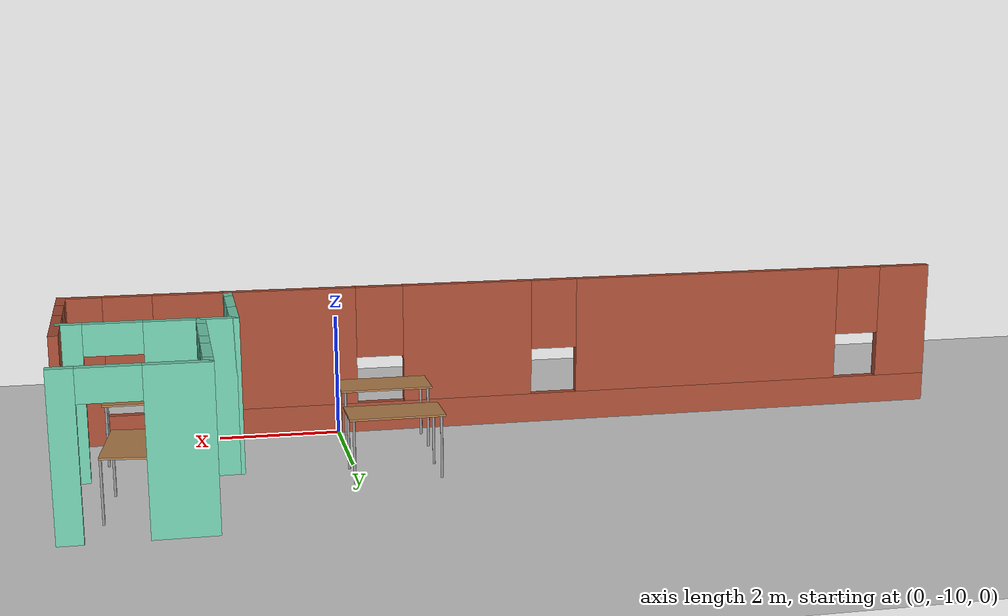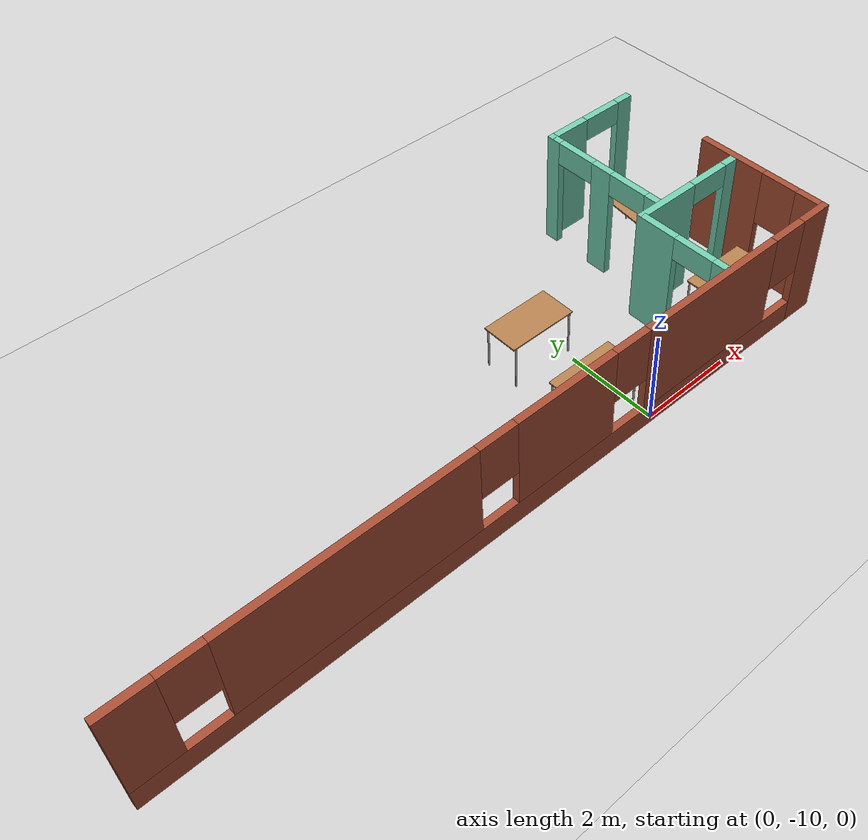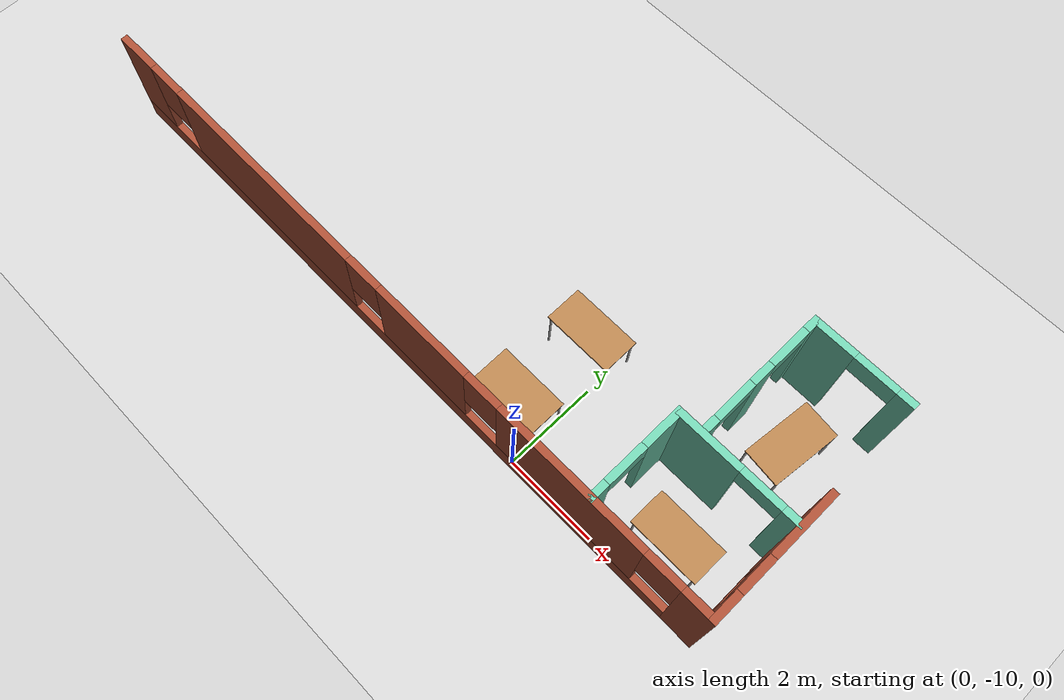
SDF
<sdf version="1.6">
 <world name="default">
  <model name="ground_plane">
   <static>1</static>
   <link name="link">
    <collision name="collision">
     <geometry><plane><normal>0 0 1</normal><size>100 100</size></plane></geometry>
     <surface>
      <contact><collide_bitmask>65535</collide_bitmask></contact>
      <friction><ode><mu>100</mu><mu2>50</mu2></ode></friction>
     </surface>
    </collision>
    <visual name="visual">
     <cast_shadows>0</cast_shadows>
     <geometry><plane><normal>0 0 1</normal><size>100 100</size></plane></geometry>
     <material>
      <script><uri>file://media/materials/scripts/gazebo.material</uri><name>Gazebo/Grey</name></script>
     </material>
    </visual>
   </link>
  </model>
  <model name="my_apartment">
   <pose>-3.10653 -3.79856 0 0 -0 0</pose>
   <link name="Wall_30">
    <pose>4.89009 -5.17282 0 0 -0 1.5708</pose>
    <visual name="Wall_30_Visual_0">
     <pose>-0.907714 0 1.25 0 -0 0</pose>
     <geometry><box><size>0.434571 0.15 2.5</size></box></geometry>
     <material>
      <script><uri>file://media/materials/scripts/gazebo.material</uri><name>Gazebo/Grey</name></script>
      <ambient>0.435294 0.796078 0.67451 1</ambient>
     </material>
     <meta><layer>0</layer></meta>
    </visual>
    <collision name="Wall_30_Collision_0">
     <geometry><box><size>0.434571 0.15 2.5</size></box></geometry>
     <pose>-0.907714 0 1.25 0 -0 0</pose>
    </collision>
    <visual name="Wall_30_Visual_1">
     <pose>0.667286 0 1.25 0 -0 0</pose>
     <geometry><box><size>0.915429 0.15 2.5</size></box></geometry>
     <material>
      <script><uri>file://media/materials/scripts/gazebo.material</uri><name>Gazebo/Grey</name></script>
      <ambient>0.435294 0.796078 0.67451 1</ambient>
     </material>
     <meta><layer>0</layer></meta>
    </visual>
    <collision name="Wall_30_Collision_1">
     <geometry><box><size>0.915429 0.15 2.5</size></box></geometry>
     <pose>0.667286 0 1.25 0 -0 0</pose>
    </collision>
    <visual name="Wall_30_Visual_2">
     <pose>-0.240429 0 2.25 0 -0 0</pose>
     <geometry><box><size>0.9 0.15 0.5</size></box></geometry>
     <material>
      <script><uri>file://media/materials/scripts/gazebo.material</uri><name>Gazebo/Grey</name></script>
      <ambient>0.435294 0.796078 0.67451 1</ambient>
     </material>
     <meta><layer>0</layer></meta>
    </visual>
    <collision name="Wall_30_Collision_2">
     <geometry><box><size>0.9 0.15 0.5</size></box></geometry>
     <pose>-0.240429 0 2.25 0 -0 0</pose>
    </collision>
   </link>
   <link name="Wall_31">
    <pose>6.19009 -4.12282 0 0 -0 0</pose>
    <visual name="Wall_31_Visual_0">
     <pose>-0.648841 0 1.25 0 -0 0</pose>
     <geometry><box><size>1.45232 0.15 2.5</size></box></geometry>
     <material>
      <script><uri>file://media/materials/scripts/gazebo.material</uri><name>Gazebo/Grey</name></script>
      <ambient>0.435294 0.796078 0.67451 1</ambient>
     </material>
     <meta><layer>0</layer></meta>
    </visual>
    <collision name="Wall_31_Collision_0">
     <geometry><box><size>1.45232 0.15 2.5</size></box></geometry>
     <pose>-0.648841 0 1.25 0 -0 0</pose>
    </collision>
    <visual name="Wall_31_Visual_1">
     <pose>1.17616 0 1.25 0 -0 0</pose>
     <geometry><box><size>0.397682 0.15 2.5</size></box></geometry>
     <material>
      <script><uri>file://media/materials/scripts/gazebo.material</uri><name>Gazebo/Grey</name></script>
      <ambient>0.435294 0.796078 0.67451 1</ambient>
     </material>
     <meta><layer>0</layer></meta>
    </visual>
    <collision name="Wall_31_Collision_1">
     <geometry><box><size>0.397682 0.15 2.5</size></box></geometry>
     <pose>1.17616 0 1.25 0 -0 0</pose>
    </collision>
    <visual name="Wall_31_Visual_2">
     <pose>0.527318 0 2.25 0 -0 0</pose>
     <geometry><box><size>0.9 0.15 0.5</size></box></geometry>
     <material>
      <script><uri>file://media/materials/scripts/gazebo.material</uri><name>Gazebo/Grey</name></script>
      <ambient>0.435294 0.796078 0.67451 1</ambient>
     </material>
     <meta><layer>0</layer></meta>
    </visual>
    <collision name="Wall_31_Collision_2">
     <geometry><box><size>0.9 0.15 0.5</size></box></geometry>
     <pose>0.527318 0 2.25 0 -0 0</pose>
    </collision>
   </link>
   <link name="Wall_33">
    <pose>5.39896 -2.64667 0 0 -0 1.5708</pose>
    <visual name="Wall_33_Visual_0">
     <pose>-1.30584 0 1.25 0 -0 0</pose>
     <geometry><box><size>0.38831 0.15 2.5</size></box></geometry>
     <material>
      <script><uri>file://media/materials/scripts/gazebo.material</uri><name>Gazebo/Grey</name></script>
      <ambient>0.435294 0.796078 0.67451 1</ambient>
     </material>
     <meta><layer>0</layer></meta>
    </visual>
    <collision name="Wall_33_Collision_0">
     <geometry><box><size>0.38831 0.15 2.5</size></box></geometry>
     <pose>-1.30584 0 1.25 0 -0 0</pose>
    </collision>
    <visual name="Wall_33_Visual_1">
     <pose>0.032228 0 1.25 0 -0 0</pose>
     <geometry><box><size>0.487836 0.15 2.5</size></box></geometry>
     <material>
      <script><uri>file://media/materials/scripts/gazebo.material</uri><name>Gazebo/Grey</name></script>
      <ambient>0.435294 0.796078 0.67451 1</ambient>
     </material>
     <meta><layer>0</layer></meta>
    </visual>
    <collision name="Wall_33_Collision_1">
     <geometry><box><size>0.487836 0.15 2.5</size></box></geometry>
     <pose>0.032228 0 1.25 0 -0 0</pose>
    </collision>
    <visual name="Wall_33_Visual_2">
     <pose>1.33807 0 1.25 0 -0 0</pose>
     <geometry><box><size>0.323854 0.15 2.5</size></box></geometry>
     <material>
      <script><uri>file://media/materials/scripts/gazebo.material</uri><name>Gazebo/Grey</name></script>
      <ambient>0.435294 0.796078 0.67451 1</ambient>
     </material>
     <meta><layer>0</layer></meta>
    </visual>
    <collision name="Wall_33_Collision_2">
     <geometry><box><size>0.323854 0.15 2.5</size></box></geometry>
     <pose>1.33807 0 1.25 0 -0 0</pose>
    </collision>
    <visual name="Wall_33_Visual_3">
     <pose>-0.66169 0 2.25 0 -0 0</pose>
     <geometry><box><size>0.9 0.15 0.5</size></box></geometry>
     <material>
      <script><uri>file://media/materials/scripts/gazebo.material</uri><name>Gazebo/Grey</name></script>
      <ambient>0.435294 0.796078 0.67451 1</ambient>
     </material>
     <meta><layer>0</layer></meta>
    </visual>
    <collision name="Wall_33_Collision_3">
     <geometry><box><size>0.9 0.15 0.5</size></box></geometry>
     <pose>-0.66169 0 2.25 0 -0 0</pose>
    </collision>
    <visual name="Wall_33_Visual_4">
     <pose>0.726146 0 2.25 0 -0 0</pose>
     <geometry><box><size>0.9 0.15 0.5</size></box></geometry>
     <material>
      <script><uri>file://media/materials/scripts/gazebo.material</uri><name>Gazebo/Grey</name></script>
      <ambient>0.435294 0.796078 0.67451 1</ambient>
     </material>
     <meta><layer>0</layer></meta>
    </visual>
    <collision name="Wall_33_Collision_4">
     <geometry><box><size>0.9 0.15 0.5</size></box></geometry>
     <pose>0.726146 0 2.25 0 -0 0</pose>
    </collision>
   </link>
   <link name="Wall_34">
    <pose>6.44896 -1.22167 0 0 -0 0</pose>
    <visual name="Wall_34_Visual_0">
     <pose>-0.641712 0 1.25 0 -0 0</pose>
     <geometry><box><size>0.966575 0.15 2.5</size></box></geometry>
     <material>
      <script><uri>file://media/materials/scripts/gazebo.material</uri><name>Gazebo/Grey</name></script>
      <ambient>0.435294 0.796078 0.67451 1</ambient>
     </material>
     <meta><layer>0</layer></meta>
    </visual>
    <collision name="Wall_34_Collision_0">
     <geometry><box><size>0.966575 0.15 2.5</size></box></geometry>
     <pose>-0.641712 0 1.25 0 -0 0</pose>
    </collision>
    <visual name="Wall_34_Visual_1">
     <pose>0.933288 0 1.25 0 -0 0</pose>
     <geometry><box><size>0.383425 0.15 2.5</size></box></geometry>
     <material>
      <script><uri>file://media/materials/scripts/gazebo.material</uri><name>Gazebo/Grey</name></script>
      <ambient>0.435294 0.796078 0.67451 1</ambient>
     </material>
     <meta><layer>0</layer></meta>
    </visual>
    <collision name="Wall_34_Collision_1">
     <geometry><box><size>0.383425 0.15 2.5</size></box></geometry>
     <pose>0.933288 0 1.25 0 -0 0</pose>
    </collision>
    <visual name="Wall_34_Visual_2">
     <pose>0.291575 0 2.25 0 -0 0</pose>
     <geometry><box><size>0.9 0.15 0.5</size></box></geometry>
     <material>
      <script><uri>file://media/materials/scripts/gazebo.material</uri><name>Gazebo/Grey</name></script>
      <ambient>0.435294 0.796078 0.67451 1</ambient>
     </material>
     <meta><layer>0</layer></meta>
    </visual>
    <collision name="Wall_34_Collision_2">
     <geometry><box><size>0.9 0.15 0.5</size></box></geometry>
     <pose>0.291575 0 2.25 0 -0 0</pose>
    </collision>
   </link>
   <link name="Wall_5">
    <pose>7.55418 -4.8 0 0 0 -1.5708</pose>
    <visual name="Wall_5_Visual_0">
     <pose>-0.735899 0 1.25 0 -0 0</pose>
     <geometry><box><size>1.5282 0.15 2.5</size></box></geometry>
     <material>
      <script><uri>file://media/materials/scripts/gazebo.material</uri><name>Gazebo/Bricks</name></script>
      <ambient>0.435294 0.796078 0.67451 1</ambient>
     </material>
     <meta><layer>0</layer></meta>
    </visual>
    <collision name="Wall_5_Collision_0">
     <geometry><box><size>1.5282 0.15 2.5</size></box></geometry>
     <pose>-0.735899 0 1.25 0 -0 0</pose>
    </collision>
    <visual name="Wall_5_Visual_1">
     <pose>0.764101 0 0.25 0 -0 0</pose>
     <geometry><box><size>1.4718 0.15 0.5</size></box></geometry>
     <material>
      <script><uri>file://media/materials/scripts/gazebo.material</uri><name>Gazebo/Bricks</name></script>
      <ambient>0.435294 0.796078 0.67451 1</ambient>
     </material>
     <meta><layer>0</layer></meta>
    </visual>
    <collision name="Wall_5_Collision_1">
     <geometry><box><size>1.4718 0.15 0.5</size></box></geometry>
     <pose>0.764101 0 0.25 0 -0 0</pose>
    </collision>
    <visual name="Wall_5_Visual_2">
     <pose>1.1641 0 1.5 0 -0 0</pose>
     <geometry><box><size>0.671798 0.15 2</size></box></geometry>
     <material>
      <script><uri>file://media/materials/scripts/gazebo.material</uri><name>Gazebo/Bricks</name></script>
      <ambient>0.435294 0.796078 0.67451 1</ambient>
     </material>
     <meta><layer>0</layer></meta>
    </visual>
    <collision name="Wall_5_Collision_2">
     <geometry><box><size>0.671798 0.15 2</size></box></geometry>
     <pose>1.1641 0 1.5 0 -0 0</pose>
    </collision>
    <visual name="Wall_5_Visual_3">
     <pose>0.428202 0 1.9 0 -0 0</pose>
     <geometry><box><size>0.8 0.15 1.2</size></box></geometry>
     <material>
      <script><uri>file://media/materials/scripts/gazebo.material</uri><name>Gazebo/Bricks</name></script>
      <ambient>0.435294 0.796078 0.67451 1</ambient>
     </material>
     <meta><layer>0</layer></meta>
    </visual>
    <collision name="Wall_5_Collision_3">
     <geometry><box><size>0.8 0.15 1.2</size></box></geometry>
     <pose>0.428202 0 1.9 0 -0 0</pose>
    </collision>
   </link>
   <link name="Wall_6">
    <pose>0.004176 -6.225 0 0 -0 3.14159</pose>
    <visual name="Wall_6_Visual_0">
     <pose>-7.26503 0 1.25 0 -0 0</pose>
     <geometry><box><size>0.719944 0.15 2.5</size></box></geometry>
     <material>
      <script><uri>file://media/materials/scripts/gazebo.material</uri><name>Gazebo/Bricks</name></script>
      <ambient>0.435294 0.796078 0.67451 1</ambient>
     </material>
     <meta><layer>0</layer></meta>
    </visual>
    <collision name="Wall_6_Collision_0">
     <geometry><box><size>0.719944 0.15 2.5</size></box></geometry>
     <pose>-7.26503 0 1.25 0 -0 0</pose>
    </collision>
    <visual name="Wall_6_Visual_1">
     <pose>0.359972 0 0.25 0 -0 0</pose>
     <geometry><box><size>14.5301 0.15 0.5</size></box></geometry>
     <material>
      <script><uri>file://media/materials/scripts/gazebo.material</uri><name>Gazebo/Bricks</name></script>
      <ambient>0.435294 0.796078 0.67451 1</ambient>
     </material>
     <meta><layer>0</layer></meta>
    </visual>
    <collision name="Wall_6_Collision_1">
     <geometry><box><size>14.5301 0.15 0.5</size></box></geometry>
     <pose>0.359972 0 0.25 0 -0 0</pose>
    </collision>
    <visual name="Wall_6_Visual_2">
     <pose>-4.43487 0 1.5 0 -0 0</pose>
     <geometry><box><size>3.34038 0.15 2</size></box></geometry>
     <material>
      <script><uri>file://media/materials/scripts/gazebo.material</uri><name>Gazebo/Bricks</name></script>
      <ambient>0.435294 0.796078 0.67451 1</ambient>
     </material>
     <meta><layer>0</layer></meta>
    </visual>
    <collision name="Wall_6_Collision_2">
     <geometry><box><size>3.34038 0.15 2</size></box></geometry>
     <pose>-4.43487 0 1.5 0 -0 0</pose>
    </collision>
    <visual name="Wall_6_Visual_3">
     <pose>-0.849622 0 1.5 0 -0 0</pose>
     <geometry><box><size>2.23011 0.15 2</size></box></geometry>
     <material>
      <script><uri>file://media/materials/scripts/gazebo.material</uri><name>Gazebo/Bricks</name></script>
      <ambient>0.435294 0.796078 0.67451 1</ambient>
     </material>
     <meta><layer>0</layer></meta>
    </visual>
    <collision name="Wall_6_Collision_3">
     <geometry><box><size>2.23011 0.15 2</size></box></geometry>
     <pose>-0.849622 0 1.5 0 -0 0</pose>
    </collision>
    <visual name="Wall_6_Visual_4">
     <pose>3.4758 0 1.5 0 -0 0</pose>
     <geometry><box><size>4.82074 0.15 2</size></box></geometry>
     <material>
      <script><uri>file://media/materials/scripts/gazebo.material</uri><name>Gazebo/Bricks</name></script>
      <ambient>0.435294 0.796078 0.67451 1</ambient>
     </material>
     <meta><layer>0</layer></meta>
    </visual>
    <collision name="Wall_6_Collision_4">
     <geometry><box><size>4.82074 0.15 2</size></box></geometry>
     <pose>3.4758 0 1.5 0 -0 0</pose>
    </collision>
    <visual name="Wall_6_Visual_5">
     <pose>7.15559 0 1.5 0 -0 0</pose>
     <geometry><box><size>0.93883 0.15 2</size></box></geometry>
     <material>
      <script><uri>file://media/materials/scripts/gazebo.material</uri><name>Gazebo/Bricks</name></script>
      <ambient>0.435294 0.796078 0.67451 1</ambient>
     </material>
     <meta><layer>0</layer></meta>
    </visual>
    <collision name="Wall_6_Collision_5">
     <geometry><box><size>0.93883 0.15 2</size></box></geometry>
     <pose>7.15559 0 1.5 0 -0 0</pose>
    </collision>
    <visual name="Wall_6_Visual_6">
     <pose>-6.50506 0 1.9 0 -0 0</pose>
     <geometry><box><size>0.8 0.15 1.2</size></box></geometry>
     <material>
      <script><uri>file://media/materials/scripts/gazebo.material</uri><name>Gazebo/Bricks</name></script>
      <ambient>0.435294 0.796078 0.67451 1</ambient>
     </material>
     <meta><layer>0</layer></meta>
    </visual>
    <collision name="Wall_6_Collision_6">
     <geometry><box><size>0.8 0.15 1.2</size></box></geometry>
     <pose>-6.50506 0 1.9 0 -0 0</pose>
    </collision>
    <visual name="Wall_6_Visual_7">
     <pose>-2.36468 0 1.9 0 -0 0</pose>
     <geometry><box><size>0.8 0.15 1.2</size></box></geometry>
     <material>
      <script><uri>file://media/materials/scripts/gazebo.material</uri><name>Gazebo/Bricks</name></script>
      <ambient>0.435294 0.796078 0.67451 1</ambient>
     </material>
     <meta><layer>0</layer></meta>
    </visual>
    <collision name="Wall_6_Collision_7">
     <geometry><box><size>0.8 0.15 1.2</size></box></geometry>
     <pose>-2.36468 0 1.9 0 -0 0</pose>
    </collision>
    <visual name="Wall_6_Visual_8">
     <pose>0.665433 0 1.9 0 -0 0</pose>
     <geometry><box><size>0.8 0.15 1.2</size></box></geometry>
     <material>
      <script><uri>file://media/materials/scripts/gazebo.material</uri><name>Gazebo/Bricks</name></script>
      <ambient>0.435294 0.796078 0.67451 1</ambient>
     </material>
     <meta><layer>0</layer></meta>
    </visual>
    <collision name="Wall_6_Collision_8">
     <geometry><box><size>0.8 0.15 1.2</size></box></geometry>
     <pose>0.665433 0 1.9 0 -0 0</pose>
    </collision>
    <visual name="Wall_6_Visual_9">
     <pose>6.28617 0 1.9 0 -0 0</pose>
     <geometry><box><size>0.8 0.15 1.2</size></box></geometry>
     <material>
      <script><uri>file://media/materials/scripts/gazebo.material</uri><name>Gazebo/Bricks</name></script>
      <ambient>0.435294 0.796078 0.67451 1</ambient>
     </material>
     <meta><layer>0</layer></meta>
    </visual>
    <collision name="Wall_6_Collision_9">
     <geometry><box><size>0.8 0.15 1.2</size></box></geometry>
     <pose>6.28617 0 1.9 0 -0 0</pose>
    </collision>
   </link>
   <static>1</static>
  </model>
  <model name="table">
   <static>1</static>
   <link name="link">
    <collision name="surface">
     <pose>0 0 1 0 -0 0</pose>
     <geometry><box><size>1.5 0.8 0.03</size></box></geometry>
     <surface><friction><ode><mu>0.6</mu><mu2>0.6</mu2></ode></friction></surface>
    </collision>
    <visual name="visual1">
     <pose>0 0 1 0 -0 0</pose>
     <geometry><box><size>1.5 0.8 0.03</size></box></geometry>
     <material>
      <script><uri>file://media/materials/scripts/gazebo.material</uri><name>Gazebo/Wood</name></script>
     </material>
    </visual>
    <collision name="front_left_leg">
     <pose>0.68 0.38 0.5 0 -0 0</pose>
     <geometry><cylinder><radius>0.02</radius><length>1</length></cylinder></geometry>
    </collision>
    <visual name="front_left_leg">
     <pose>0.68 0.38 0.5 0 -0 0</pose>
     <geometry><cylinder><radius>0.02</radius><length>1</length></cylinder></geometry>
     <material>
      <script><uri>file://media/materials/scripts/gazebo.material</uri><name>Gazebo/Grey</name></script>
     </material>
    </visual>
    <collision name="front_right_leg">
     <pose>0.68 -0.38 0.5 0 -0 0</pose>
     <geometry><cylinder><radius>0.02</radius><length>1</length></cylinder></geometry>
    </collision>
    <visual name="front_right_leg">
     <pose>0.68 -0.38 0.5 0 -0 0</pose>
     <geometry><cylinder><radius>0.02</radius><length>1</length></cylinder></geometry>
     <material>
      <script><uri>file://media/materials/scripts/gazebo.material</uri><name>Gazebo/Grey</name></script>
     </material>
    </visual>
    <collision name="back_right_leg">
     <pose>-0.68 -0.38 0.5 0 -0 0</pose>
     <geometry><cylinder><radius>0.02</radius><length>1</length></cylinder></geometry>
    </collision>
    <visual name="back_right_leg">
     <pose>-0.68 -0.38 0.5 0 -0 0</pose>
     <geometry><cylinder><radius>0.02</radius><length>1</length></cylinder></geometry>
     <material>
      <script><uri>file://media/materials/scripts/gazebo.material</uri><name>Gazebo/Grey</name></script>
     </material>
    </visual>
    <collision name="back_left_leg">
     <pose>-0.68 0.38 0.5 0 -0 0</pose>
     <geometry><cylinder><radius>0.02</radius><length>1</length></cylinder></geometry>
    </collision>
    <visual name="back_left_leg">
     <pose>-0.68 0.38 0.5 0 -0 0</pose>
     <geometry><cylinder><radius>0.02</radius><length>1</length></cylinder></geometry>
     <material>
      <script><uri>file://media/materials/scripts/gazebo.material</uri><name>Gazebo/Grey</name></script>
     </material>
    </visual>
   </link>
   <pose>-0.679169 -9.18946 0 0 -0 0</pose>
  </model>
  <model name="table_2">
   <static>1</static>
   <link name="link">
    <collision name="surface">
     <pose>0 0 1 0 -0 0</pose>
     <geometry><box><size>1.5 0.8 0.03</size></box></geometry>
     <surface><friction><ode><mu>0.6</mu><mu2>0.6</mu2></ode></friction></surface>
    </collision>
    <visual name="visual1">
     <pose>0 0 1 0 -0 0</pose>
     <geometry><box><size>1.5 0.8 0.03</size></box></geometry>
     <material>
      <script><uri>file://media/materials/scripts/gazebo.material</uri><name>Gazebo/Wood</name></script>
     </material>
    </visual>
    <collision name="front_left_leg">
     <pose>0.68 0.38 0.5 0 -0 0</pose>
     <geometry><cylinder><radius>0.02</radius><length>1</length></cylinder></geometry>
    </collision>
    <visual name="front_left_leg">
     <pose>0.68 0.38 0.5 0 -0 0</pose>
     <geometry><cylinder><radius>0.02</radius><length>1</length></cylinder></geometry>
     <material>
      <script><uri>file://media/materials/scripts/gazebo.material</uri><name>Gazebo/Grey</name></script>
     </material>
    </visual>
    <collision name="front_right_leg">
     <pose>0.68 -0.38 0.5 0 -0 0</pose>
     <geometry><cylinder><radius>0.02</radius><length>1</length></cylinder></geometry>
    </collision>
    <visual name="front_right_leg">
     <pose>0.68 -0.38 0.5 0 -0 0</pose>
     <geometry><cylinder><radius>0.02</radius><length>1</length></cylinder></geometry>
     <material>
      <script><uri>file://media/materials/scripts/gazebo.material</uri><name>Gazebo/Grey</name></script>
     </material>
    </visual>
    <collision name="back_right_leg">
     <pose>-0.68 -0.38 0.5 0 -0 0</pose>
     <geometry><cylinder><radius>0.02</radius><length>1</length></cylinder></geometry>
    </collision>
    <visual name="back_right_leg">
     <pose>-0.68 -0.38 0.5 0 -0 0</pose>
     <geometry><cylinder><radius>0.02</radius><length>1</length></cylinder></geometry>
     <material>
      <script><uri>file://media/materials/scripts/gazebo.material</uri><name>Gazebo/Grey</name></script>
     </material>
    </visual>
    <collision name="back_left_leg">
     <pose>-0.68 0.38 0.5 0 -0 0</pose>
     <geometry><cylinder><radius>0.02</radius><length>1</length></cylinder></geometry>
    </collision>
    <visual name="back_left_leg">
     <pose>-0.68 0.38 0.5 0 -0 0</pose>
     <geometry><cylinder><radius>0.02</radius><length>1</length></cylinder></geometry>
     <material>
      <script><uri>file://media/materials/scripts/gazebo.material</uri><name>Gazebo/Grey</name></script>
     </material>
    </visual>
   </link>
   <pose>-0.593313 -7.38655 0 0 -0 0</pose>
  </model>
  <model name="table_4">
   <static>1</static>
   <link name="link">
    <collision name="surface">
     <pose>0 0 1 0 -0 0</pose>
     <geometry><box><size>1.5 0.8 0.03</size></box></geometry>
     <surface><friction><ode><mu>0.6</mu><mu2>0.6</mu2></ode></friction></surface>
    </collision>
    <visual name="visual1">
     <pose>0 0 1 0 -0 0</pose>
     <geometry><box><size>1.5 0.8 0.03</size></box></geometry>
     <material>
      <script><uri>file://media/materials/scripts/gazebo.material</uri><name>Gazebo/Wood</name></script>
     </material>
    </visual>
    <collision name="front_left_leg">
     <pose>0.68 0.38 0.5 0 -0 0</pose>
     <geometry><cylinder><radius>0.02</radius><length>1</length></cylinder></geometry>
    </collision>
    <visual name="front_left_leg">
     <pose>0.68 0.38 0.5 0 -0 0</pose>
     <geometry><cylinder><radius>0.02</radius><length>1</length></cylinder></geometry>
     <material>
      <script><uri>file://media/materials/scripts/gazebo.material</uri><name>Gazebo/Grey</name></script>
     </material>
    </visual>
    <collision name="front_right_leg">
     <pose>0.68 -0.38 0.5 0 -0 0</pose>
     <geometry><cylinder><radius>0.02</radius><length>1</length></cylinder></geometry>
    </collision>
    <visual name="front_right_leg">
     <pose>0.68 -0.38 0.5 0 -0 0</pose>
     <geometry><cylinder><radius>0.02</radius><length>1</length></cylinder></geometry>
     <material>
      <script><uri>file://media/materials/scripts/gazebo.material</uri><name>Gazebo/Grey</name></script>
     </material>
    </visual>
    <collision name="back_right_leg">
     <pose>-0.68 -0.38 0.5 0 -0 0</pose>
     <geometry><cylinder><radius>0.02</radius><length>1</length></cylinder></geometry>
    </collision>
    <visual name="back_right_leg">
     <pose>-0.68 -0.38 0.5 0 -0 0</pose>
     <geometry><cylinder><radius>0.02</radius><length>1</length></cylinder></geometry>
     <material>
      <script><uri>file://media/materials/scripts/gazebo.material</uri><name>Gazebo/Grey</name></script>
     </material>
    </visual>
    <collision name="back_left_leg">
     <pose>-0.68 0.38 0.5 0 -0 0</pose>
     <geometry><cylinder><radius>0.02</radius><length>1</length></cylinder></geometry>
    </collision>
    <visual name="back_left_leg">
     <pose>-0.68 0.38 0.5 0 -0 0</pose>
     <geometry><cylinder><radius>0.02</radius><length>1</length></cylinder></geometry>
     <material>
      <script><uri>file://media/materials/scripts/gazebo.material</uri><name>Gazebo/Grey</name></script>
     </material>
    </visual>
   </link>
   <pose>3.121 -9.08048 0 0 -0 0</pose>
  </model>
  <model name="table_5">
   <static>1</static>
   <link name="link">
    <collision name="surface">
     <pose>0 0 1 0 -0 0</pose>
     <geometry><box><size>1.5 0.8 0.03</size></box></geometry>
     <surface><friction><ode><mu>0.6</mu><mu2>0.6</mu2></ode></friction></surface>
    </collision>
    <visual name="visual1">
     <pose>0 0 1 0 -0 0</pose>
     <geometry><box><size>1.5 0.8 0.03</size></box></geometry>
     <material>
      <script><uri>file://media/materials/scripts/gazebo.material</uri><name>Gazebo/Wood</name></script>
     </material>
    </visual>
    <collision name="front_left_leg">
     <pose>0.68 0.38 0.5 0 -0 0</pose>
     <geometry><cylinder><radius>0.02</radius><length>1</length></cylinder></geometry>
    </collision>
    <visual name="front_left_leg">
     <pose>0.68 0.38 0.5 0 -0 0</pose>
     <geometry><cylinder><radius>0.02</radius><length>1</length></cylinder></geometry>
     <material>
      <script><uri>file://media/materials/scripts/gazebo.material</uri><name>Gazebo/Grey</name></script>
     </material>
    </visual>
    <collision name="front_right_leg">
     <pose>0.68 -0.38 0.5 0 -0 0</pose>
     <geometry><cylinder><radius>0.02</radius><length>1</length></cylinder></geometry>
    </collision>
    <visual name="front_right_leg">
     <pose>0.68 -0.38 0.5 0 -0 0</pose>
     <geometry><cylinder><radius>0.02</radius><length>1</length></cylinder></geometry>
     <material>
      <script><uri>file://media/materials/scripts/gazebo.material</uri><name>Gazebo/Grey</name></script>
     </material>
    </visual>
    <collision name="back_right_leg">
     <pose>-0.68 -0.38 0.5 0 -0 0</pose>
     <geometry><cylinder><radius>0.02</radius><length>1</length></cylinder></geometry>
    </collision>
    <visual name="back_right_leg">
     <pose>-0.68 -0.38 0.5 0 -0 0</pose>
     <geometry><cylinder><radius>0.02</radius><length>1</length></cylinder></geometry>
     <material>
      <script><uri>file://media/materials/scripts/gazebo.material</uri><name>Gazebo/Grey</name></script>
     </material>
    </visual>
    <collision name="back_left_leg">
     <pose>-0.68 0.38 0.5 0 -0 0</pose>
     <geometry><cylinder><radius>0.02</radius><length>1</length></cylinder></geometry>
    </collision>
    <visual name="back_left_leg">
     <pose>-0.68 0.38 0.5 0 -0 0</pose>
     <geometry><cylinder><radius>0.02</radius><length>1</length></cylinder></geometry>
     <material>
      <script><uri>file://media/materials/scripts/gazebo.material</uri><name>Gazebo/Grey</name></script>
     </material>
    </visual>
   </link>
   <pose>3.38334 -6.39304 0 0 0 -1.68071</pose>
  </model>
 </world>
</sdf>
